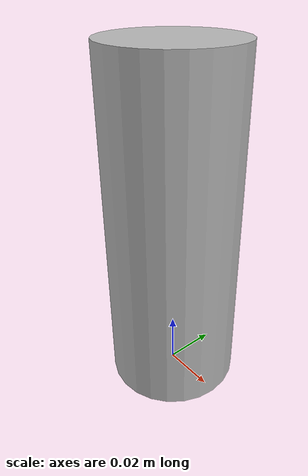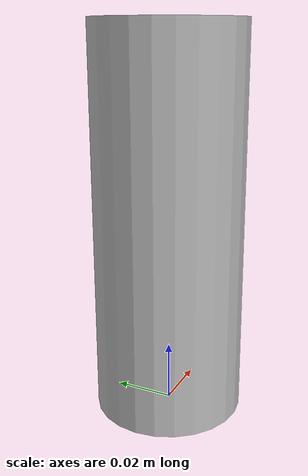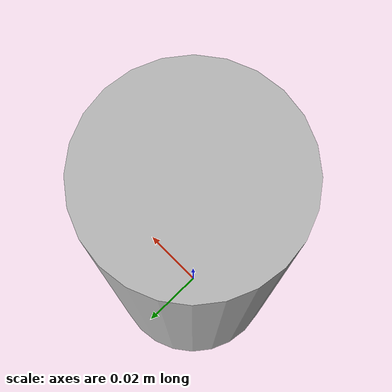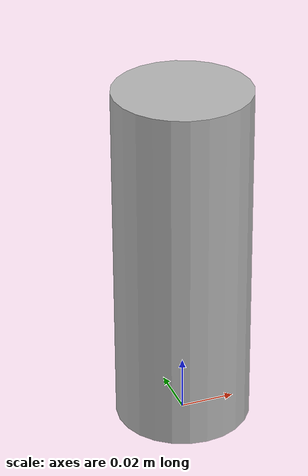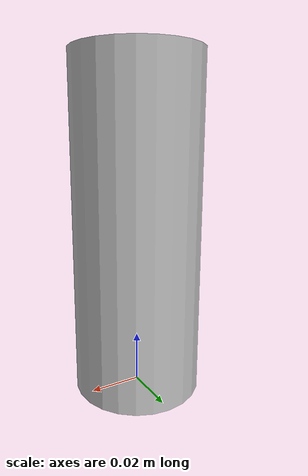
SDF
<?xml version='1.0'?>
<sdf version='1.6'>
  <model name='object0'>
    <link name='link_0'>
      <pose frame=''>0 0 0.065 0 0 0</pose>
      <inertial>
        <mass>0.010</mass>
        <inertia>
          <ixx>4.7583e-005</ixx>
          <ixy>0</ixy>
          <ixz>0</ixz>
          <iyy>4.7583e-005</iyy>
          <iyz>0</iyz>
          <izz>3.1250e-006</izz>
        </inertia>
      </inertial>
      <gravity>1</gravity>
      <self_collide>0</self_collide>
      <kinematic>0</kinematic>
      <visual name='visual'>
        <pose frame=''>0 0 0 0 -0 0</pose>
        <geometry>
          <cylinder>
            <radius>0.025000</radius>
            <length>0.130000</length>
          </cylinder>
        </geometry>
        <material>
          <script>
            <uri>model://beer/materials/scripts</uri>
            <uri>model://beer/materials/textures</uri>
            <name>Beer/Diffuse</name>
          </script>
        </material>
        <cast_shadows>1</cast_shadows>
        <transparency>0</transparency>
      </visual>
      <collision name='collision'>
        <laser_retro>0</laser_retro>
        <max_contacts>10</max_contacts>
        <pose frame=''>0 0 0 0 -0 0</pose>
        <geometry>
          <cylinder>
            <radius>0.025000</radius>
            <length>0.130000</length>
          </cylinder>
        </geometry>
        <surface>
          <friction>
            <ode>
              <mu>1000000.0</mu>
              <mu2>10000.0</mu2>
            </ode>
          </friction>
          <contact>
            <ode>
              <kp>1000000.0</kp>
              <kd>100.0</kd>
              <max_vel>1.0</max_vel>
              <min_depth>0.002</min_depth>
            </ode>
          </contact>
        </surface>
      </collision>
    </link>
    <static>0</static>
    <allow_auto_disable>1</allow_auto_disable>
  </model>
</sdf>
